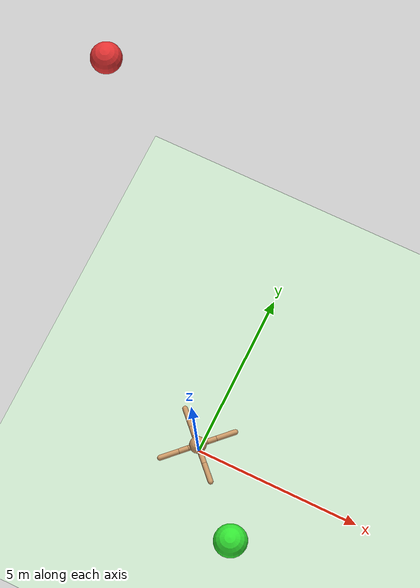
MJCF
<mujoco model="ant">
  <compiler angle="degree" coordinate="local" inertiafromgeom="true"/>
  <option integrator="RK4" timestep="0.01"/>
  <custom>
    <numeric data="0.0 0.0 0.55 1.0 0.0 0.0 0.0 0.0 1.0 0.0 -1.0 0.0 -1.0 0.0 1.0" name="init_qpos"/>
  </custom>
  <default>
    <joint armature="1" damping="1" limited="true"/>
    <geom conaffinity="0" condim="3" density="5.0" friction="1 0.5 0.5" margin="0.01" rgba="0.8 0.6 0.4 1"/>
  </default>

  <default class="rangefinder">
      <site type="capsule" size=".005 .01" group="4"/>
  </default>

  <asset>
    <texture builtin="gradient" height="100" rgb1="1 1 1" rgb2="0 0 0" type="skybox" width="100"/>
    <texture builtin="flat" height="1278" mark="cross" markrgb="1 1 1" name="texgeom" random="0.01" rgb1="0.8 0.6 0.4" rgb2="0.8 0.6 0.4" type="cube" width="127"/>
    <texture builtin="checker" height="100" name="texplane" rgb1="0 0 0" rgb2="0.8 0.8 0.8" type="2d" width="100"/>
    <material name="MatPlane" reflectance="0.5" shininess="1" specular="1" texrepeat="60 60" texture="texplane"/>
    <material name="geom" texture="texgeom" texuniform="true"/>
  </asset>
  <worldbody>
    <light cutoff="100" diffuse="1 1 1" dir="-0 0 -1.3" directional="true" exponent="1" pos="0 0 1.3" specular=".1 .1 .1"/>
    <geom conaffinity="1" condim="3" material="" name="floor" pos="0 0 0" rgba="0.8 0.9 0.8 1" size="40 40 40" type="plane"/>

    <body name="torso" pos="0 0 0.75">
      <camera name="track" mode="trackcom" pos="0 -3 0.3" xyaxes="1 0 0 0 0 1"/>

      <site name="rf_00" class="rangefinder" pos="0 0 0.81" quat="0.44 1 0 0"/>
      <site name="rf_01" class="rangefinder" pos="0 0 0.81" quat="0.32 1 0 0.32"/>
      <site name="rf_02" class="rangefinder" pos="0 0 0.81" quat="0 1 0 0.44"/>
      <site name="rf_03" class="rangefinder" pos="0 0 0.81" quat="-0.32 1 0 0.32"/>
      <site name="rf_04" class="rangefinder" pos="0 0 0.81" quat="0 1 0 -0.44"/>
      <site name="rf_05" class="rangefinder" pos="0 0 0.81" quat="-0.32 1 0 -0.32"/>
      <site name="rf_06" class="rangefinder" pos="0 0 0.81" quat="-0.44 1 0 0"/>
      <site name="rf_07" class="rangefinder" pos="0 0 0.81" quat="0.32 1 0 -0.32"/>

      <site name="rf_10" class="rangefinder" pos="0 0 0.81" quat="0.55 1 0 0"/>
      <site name="rf_11" class="rangefinder" pos="0 0 0.81" quat="0.39 1 0 0.39"/>
      <site name="rf_12" class="rangefinder" pos="0 0 0.81" quat="0 1 0 0.55"/>
      <site name="rf_13" class="rangefinder" pos="0 0 0.81" quat="-0.39 1 0 0.39"/>
      <site name="rf_14" class="rangefinder" pos="0 0 0.81" quat="0 1 0 -0.55"/>
      <site name="rf_15" class="rangefinder" pos="0 0 0.81" quat="-0.39 1 0 -0.39"/>
      <site name="rf_16" class="rangefinder" pos="0 0 0.81" quat="-0.55 1 0 0"/>
      <site name="rf_17" class="rangefinder" pos="0 0 0.81" quat="0.39 1 0 -0.39"/>

      <geom name="torso_geom" pos="0 0 0" size="0.25" type="sphere"/>
      <joint armature="0" damping="0" limited="false" margin="0.01" name="root" pos="0 0 0" type="free"/>
      <body name="front_left_leg" pos="0 0 0">
        <geom fromto="0.0 0.0 0.0 0.2 0.2 0.0" name="aux_1_geom" size="0.08" type="capsule"/>
        <body name="aux_1" pos="0.2 0.2 0">
          <joint axis="0 0 1" name="hip_1" pos="0.0 0.0 0.0" range="-30 30" type="hinge"/>
          <geom fromto="0.0 0.0 0.0 0.2 0.2 0.0" name="left_leg_geom" size="0.08" type="capsule"/>
          <body pos="0.2 0.2 0">
            <joint axis="-1 1 0" name="ankle_1" pos="0.0 0.0 0.0" range="30 70" type="hinge"/>
            <geom fromto="0.0 0.0 0.0 0.4 0.4 0.0" name="left_ankle_geom" size="0.08" type="capsule"/>
          </body>
        </body>
      </body>
      <body name="front_right_leg" pos="0 0 0">
        <geom fromto="0.0 0.0 0.0 -0.2 0.2 0.0" name="aux_2_geom" size="0.08" type="capsule"/>
        <body name="aux_2" pos="-0.2 0.2 0">
          <joint axis="0 0 1" name="hip_2" pos="0.0 0.0 0.0" range="-30 30" type="hinge"/>
          <geom fromto="0.0 0.0 0.0 -0.2 0.2 0.0" name="right_leg_geom" size="0.08" type="capsule"/>
          <body pos="-0.2 0.2 0">
            <joint axis="1 1 0" name="ankle_2" pos="0.0 0.0 0.0" range="-70 -30" type="hinge"/>
            <geom fromto="0.0 0.0 0.0 -0.4 0.4 0.0" name="right_ankle_geom" size="0.08" type="capsule"/>
          </body>
        </body>
      </body>
      <body name="back_leg" pos="0 0 0">
        <geom fromto="0.0 0.0 0.0 -0.2 -0.2 0.0" name="aux_3_geom" size="0.08" type="capsule"/>
        <body name="aux_3" pos="-0.2 -0.2 0">
          <joint axis="0 0 1" name="hip_3" pos="0.0 0.0 0.0" range="-30 30" type="hinge"/>
          <geom fromto="0.0 0.0 0.0 -0.2 -0.2 0.0" name="back_leg_geom" size="0.08" type="capsule"/>
          <body pos="-0.2 -0.2 0">
            <joint axis="-1 1 0" name="ankle_3" pos="0.0 0.0 0.0" range="-70 -30" type="hinge"/>
            <geom fromto="0.0 0.0 0.0 -0.4 -0.4 0.0" name="third_ankle_geom" size="0.08" type="capsule"/>
          </body>
        </body>
      </body>
      <body name="right_back_leg" pos="0 0 0">
        <geom fromto="0.0 0.0 0.0 0.2 -0.2 0.0" name="aux_4_geom" size="0.08" type="capsule"/>
        <body name="aux_4" pos="0.2 -0.2 0">
          <joint axis="0 0 1" name="hip_4" pos="0.0 0.0 0.0" range="-30 30" type="hinge"/>
          <geom fromto="0.0 0.0 0.0 0.2 -0.2 0.0" name="rightback_leg_geom" size="0.08" type="capsule"/>
          <body pos="0.2 -0.2 0">
            <joint axis="1 1 0" name="ankle_4" pos="0.0 0.0 0.0" range="30 70" type="hinge"/>
            <geom fromto="0.0 0.0 0.0 0.4 -0.4 0.0" name="fourth_ankle_geom" size="0.08" type="capsule"/>
          </body>
        </body>
      </body>
    </body>

    <body name="target" pos="2 -2 .25">
      <geom conaffinity="0" contype="0" name="target" pos="0 0 0" rgba="0.2 0.9 0.2 1" size=".5" type="sphere"/>
    </body>

    <body name="highlevel" pos="-2 2 20.0">
      <geom conaffinity="0" contype="0" name="highlevel" pos="0 0 0" rgba="0.9 0.2 0.2 1" size=".3" type="sphere"/>
    </body>

  </worldbody>
  <actuator>
    <motor ctrllimited="true" ctrlrange="-1.0 1.0" joint="hip_4" gear="150"/>
    <motor ctrllimited="true" ctrlrange="-1.0 1.0" joint="ankle_4" gear="150"/>
    <motor ctrllimited="true" ctrlrange="-1.0 1.0" joint="hip_1" gear="150"/>
    <motor ctrllimited="true" ctrlrange="-1.0 1.0" joint="ankle_1" gear="150"/>
    <motor ctrllimited="true" ctrlrange="-1.0 1.0" joint="hip_2" gear="150"/>
    <motor ctrllimited="true" ctrlrange="-1.0 1.0" joint="ankle_2" gear="150"/>
    <motor ctrllimited="true" ctrlrange="-1.0 1.0" joint="hip_3" gear="150"/>
    <motor ctrllimited="true" ctrlrange="-1.0 1.0" joint="ankle_3" gear="150"/>
  </actuator>

  <sensor>
    <rangefinder name="rf_00" site="rf_00"/>
    <rangefinder name="rf_01" site="rf_01"/>
    <rangefinder name="rf_02" site="rf_02"/>
    <rangefinder name="rf_03" site="rf_03"/>
    <rangefinder name="rf_04" site="rf_04"/>
    <rangefinder name="rf_05" site="rf_05"/>
    <rangefinder name="rf_06" site="rf_06"/>
    <rangefinder name="rf_07" site="rf_07"/>

    <rangefinder name="rf_10" site="rf_10"/>
    <rangefinder name="rf_11" site="rf_11"/>
    <rangefinder name="rf_12" site="rf_12"/>
    <rangefinder name="rf_13" site="rf_13"/>
    <rangefinder name="rf_14" site="rf_14"/>
    <rangefinder name="rf_15" site="rf_15"/>
    <rangefinder name="rf_16" site="rf_16"/>
    <rangefinder name="rf_17" site="rf_17"/>

  </sensor>

</mujoco>
